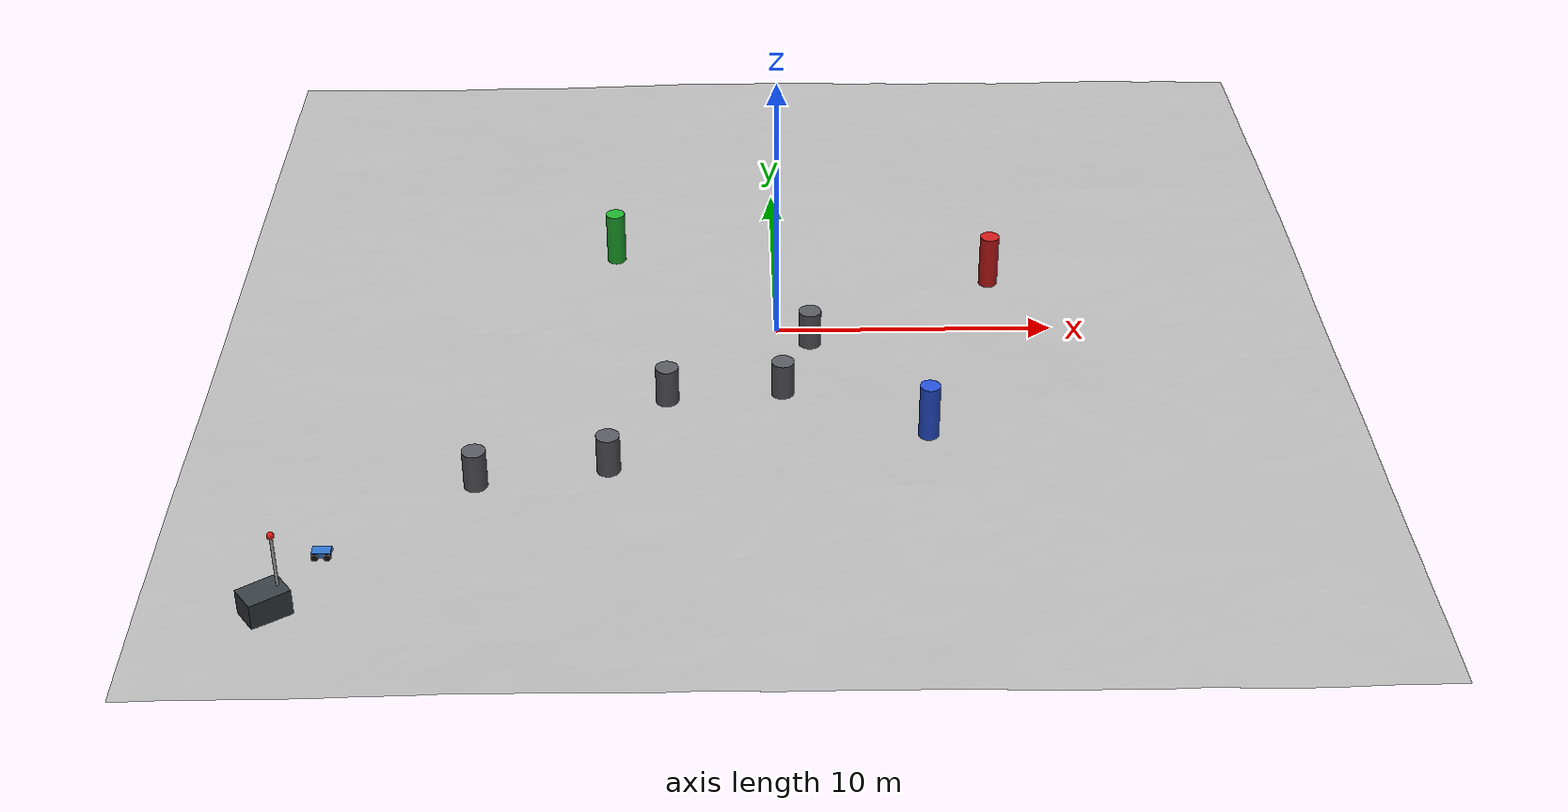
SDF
<?xml version="1.0"?>
<sdf version="1.9">
  <world name="teleop_rough">
    <physics name="p" type="ignored"><max_step_size>0.004</max_step_size>
      <real_time_factor>1.0</real_time_factor></physics>
    <plugin filename="gz-sim-physics-system" name="gz::sim::systems::Physics"/>
    <plugin filename="gz-sim-user-commands-system"
            name="gz::sim::systems::UserCommands"/>
    <plugin filename="gz-sim-scene-broadcaster-system"
            name="gz::sim::systems::SceneBroadcaster"/>
    <plugin filename="gz-sim-sensors-system" name="gz::sim::systems::Sensors">
      <render_engine>ogre2</render_engine>
    </plugin>
    <light type="directional" name="sun"><cast_shadows>true</cast_shadows>
      <pose>0 0 10 0 0 0</pose><diffuse>0.95 0.92 0.86 1</diffuse>
      <direction>-0.4 0.2 -0.9</direction></light>

    <model name="terrain"><static>true</static>
      <link name="l">
        <collision name="c"><geometry><mesh><uri>file:///home/ubuntu/TEZA/src/teleop_rover/worlds/teleop_rough_terrain.obj</uri></mesh></geometry></collision>
        <visual name="v"><geometry><mesh><uri>file:///home/ubuntu/TEZA/src/teleop_rover/worlds/teleop_rough_terrain.obj</uri></mesh></geometry></visual>
      </link>
    </model>

    <model name="target_red"><static>true</static>
      <pose>8.00 3.00 1.15 0 0 0</pose>
      <link name="l">
        <visual name="v"><geometry><cylinder><radius>0.35</radius>
          <length>2.0</length></cylinder></geometry>
          <material><ambient>0.8 0.1 0.1 1</ambient>
          <diffuse>0.8 0.1 0.1 1</diffuse></material></visual>
        <collision name="c"><geometry><cylinder><radius>0.35</radius>
          <length>2.0</length></cylinder></geometry></collision></link>
    </model>
    <model name="target_green"><static>true</static>
      <pose>-6.00 5.00 1.17 0 0 0</pose>
      <link name="l">
        <visual name="v"><geometry><cylinder><radius>0.35</radius>
          <length>2.0</length></cylinder></geometry>
          <material><ambient>0.12 0.7 0.18 1</ambient>
          <diffuse>0.12 0.7 0.18 1</diffuse></material></visual>
        <collision name="c"><geometry><cylinder><radius>0.35</radius>
          <length>2.0</length></cylinder></geometry></collision></link>
    </model>
    <model name="target_blue"><static>true</static>
      <pose>5.00 -7.00 1.19 0 0 0</pose>
      <link name="l">
        <visual name="v"><geometry><cylinder><radius>0.35</radius>
          <length>2.0</length></cylinder></geometry>
          <material><ambient>0.15 0.32 0.85 1</ambient>
          <diffuse>0.15 0.32 0.85 1</diffuse></material></visual>
        <collision name="c"><geometry><cylinder><radius>0.35</radius>
          <length>2.0</length></cylinder></geometry></collision></link>
    </model>

    <model name="gcs_station"><static>true</static>
      <pose>-16.00 -16.00 0.14 0 0 0.6</pose>
      <link name="l">
        <visual name="box"><pose>0 0 0.45 0 0 0</pose>
          <geometry><box><size>1.4 1.0 0.9</size></box></geometry>
          <material><ambient>0.22 0.24 0.26 1</ambient>
          <diffuse>0.22 0.24 0.26 1</diffuse></material></visual>
        <collision name="cbox"><pose>0 0 0.45 0 0 0</pose>
          <geometry><box><size>1.4 1.0 0.9</size></box></geometry></collision>
        <visual name="mast"><pose>0.5 0 1.6 0 0 0</pose>
          <geometry><cylinder><radius>0.05</radius><length>2.2</length></cylinder></geometry>
          <material><ambient>0.7 0.7 0.7 1</ambient></material></visual>
        <visual name="tip"><pose>0.5 0 2.75 0 0 0</pose>
          <geometry><sphere><radius>0.12</radius></sphere></geometry>
          <material><ambient>0.85 0.1 0.1 1</ambient>
          <diffuse>0.85 0.1 0.1 1</diffuse></material></visual>
      </link>
    </model>

    <model name="obs_1"><static>true</static>
      <pose>-10.15 -9.46 0.75 0 0 0</pose>
      <link name="l">
        <visual name="v"><geometry><cylinder><radius>0.40</radius>
          <length>1.5</length></cylinder></geometry>
          <material><ambient>0.35 0.35 0.38 1</ambient>
          <diffuse>0.35 0.35 0.38 1</diffuse></material></visual>
        <collision name="c"><geometry><cylinder><radius>0.40</radius>
          <length>1.5</length></cylinder></geometry></collision></link>
    </model>
    <model name="obs_2"><static>true</static>
      <pose>-5.80 -8.68 0.75 0 0 0</pose>
      <link name="l">
        <visual name="v"><geometry><cylinder><radius>0.40</radius>
          <length>1.5</length></cylinder></geometry>
          <material><ambient>0.35 0.35 0.38 1</ambient>
          <diffuse>0.35 0.35 0.38 1</diffuse></material></visual>
        <collision name="c"><geometry><cylinder><radius>0.40</radius>
          <length>1.5</length></cylinder></geometry></collision></link>
    </model>
    <model name="obs_3"><static>true</static>
      <pose>-3.91 -4.62 0.75 0 0 0</pose>
      <link name="l">
        <visual name="v"><geometry><cylinder><radius>0.40</radius>
          <length>1.5</length></cylinder></geometry>
          <material><ambient>0.35 0.35 0.38 1</ambient>
          <diffuse>0.35 0.35 0.38 1</diffuse></material></visual>
        <collision name="c"><geometry><cylinder><radius>0.40</radius>
          <length>1.5</length></cylinder></geometry></collision></link>
    </model>
    <model name="obs_4"><static>true</static>
      <pose>0.11 -4.34 0.75 0 0 0</pose>
      <link name="l">
        <visual name="v"><geometry><cylinder><radius>0.40</radius>
          <length>1.5</length></cylinder></geometry>
          <material><ambient>0.35 0.35 0.38 1</ambient>
          <diffuse>0.35 0.35 0.38 1</diffuse></material></visual>
        <collision name="c"><geometry><cylinder><radius>0.40</radius>
          <length>1.5</length></cylinder></geometry></collision></link>
    </model>
    <model name="obs_5"><static>true</static>
      <pose>1.16 -1.04 0.75 0 0 0</pose>
      <link name="l">
        <visual name="v"><geometry><cylinder><radius>0.40</radius>
          <length>1.5</length></cylinder></geometry>
          <material><ambient>0.35 0.35 0.38 1</ambient>
          <diffuse>0.35 0.35 0.38 1</diffuse></material></visual>
        <collision name="c"><geometry><cylinder><radius>0.40</radius>
          <length>1.5</length></cylinder></geometry></collision></link>
    </model>
    <model name="rover">
      <pose>-14.5 -14.0 0.75 0 0 0</pose>
      <link name="chassis"><pose>0 0 0.18 0 0 0</pose>
        <inertial><mass>5.0</mass><inertia><ixx>0.07</ixx><iyy>0.12</iyy>
          <izz>0.16</izz><ixy>0</ixy><ixz>0</ixz><iyz>0</iyz></inertia></inertial>
        <visual name="v"><geometry><box><size>0.6 0.4 0.18</size></box>
          </geometry><material><ambient>0.18 0.45 0.8 1</ambient>
          <diffuse>0.18 0.45 0.8 1</diffuse></material></visual>
        <collision name="c"><geometry><box><size>0.6 0.4 0.18</size></box>
          </geometry></collision>

        <sensor name="front_camera" type="camera">
          <pose>0.34 0 0.18 0 0.2 0</pose>
          <topic>camera/image</topic>
          <update_rate>15</update_rate>
          <always_on>1</always_on>
          <visualize>true</visualize>
          <camera>
            <horizontal_fov>1.0472</horizontal_fov>
            <image><width>320</width><height>240</height><format>R8G8B8</format></image>
            <clip><near>0.05</near><far>60</far></clip>
          </camera>
        </sensor>

        <sensor name="front_lidar" type="gpu_lidar">
          <pose>0.3 0 0.2 0 0 0</pose>
          <topic>scan</topic>
          <update_rate>10</update_rate>
          <always_on>1</always_on>
          <lidar><scan><horizontal><samples>360</samples><resolution>1</resolution>
            <min_angle>-3.14159</min_angle><max_angle>3.14159</max_angle></horizontal></scan>
            <range><min>0.12</min><max>12.0</max><resolution>0.01</resolution></range>
          </lidar>
        </sensor>
      </link>

      <link name="fl_wheel"><pose>0.2 0.21 0.12 -1.5708 0 0</pose>
        <inertial><mass>0.7</mass><inertia><ixx>0.003</ixx><iyy>0.003</iyy>
          <izz>0.005</izz><ixy>0</ixy><ixz>0</ixz><iyz>0</iyz></inertia></inertial>
        <visual name="v"><geometry><cylinder><radius>0.12</radius>
          <length>0.06</length></cylinder></geometry>
          <material><ambient>0.08 0.08 0.08 1</ambient></material></visual>
        <collision name="c"><geometry><cylinder><radius>0.12</radius>
          <length>0.06</length></cylinder></geometry>
          <surface><friction><ode><mu>1.4</mu><mu2>1.2</mu2></ode>
          </friction></surface></collision></link>
      <joint name="fl_wheel_joint" type="revolute">
        <parent>chassis</parent><child>fl_wheel</child>
        <axis><xyz>0 0 1</xyz><limit><lower>-1e16</lower><upper>1e16</upper></limit></axis>
      </joint>

      <link name="rl_wheel"><pose>-0.2 0.21 0.12 -1.5708 0 0</pose>
        <inertial><mass>0.7</mass><inertia><ixx>0.003</ixx><iyy>0.003</iyy>
          <izz>0.005</izz><ixy>0</ixy><ixz>0</ixz><iyz>0</iyz></inertia></inertial>
        <visual name="v"><geometry><cylinder><radius>0.12</radius>
          <length>0.06</length></cylinder></geometry>
          <material><ambient>0.08 0.08 0.08 1</ambient></material></visual>
        <collision name="c"><geometry><cylinder><radius>0.12</radius>
          <length>0.06</length></cylinder></geometry>
          <surface><friction><ode><mu>1.4</mu><mu2>1.2</mu2></ode>
          </friction></surface></collision></link>
      <joint name="rl_wheel_joint" type="revolute">
        <parent>chassis</parent><child>rl_wheel</child>
        <axis><xyz>0 0 1</xyz><limit><lower>-1e16</lower><upper>1e16</upper></limit></axis>
      </joint>

      <link name="fr_wheel"><pose>0.2 -0.21 0.12 -1.5708 0 0</pose>
        <inertial><mass>0.7</mass><inertia><ixx>0.003</ixx><iyy>0.003</iyy>
          <izz>0.005</izz><ixy>0</ixy><ixz>0</ixz><iyz>0</iyz></inertia></inertial>
        <visual name="v"><geometry><cylinder><radius>0.12</radius>
          <length>0.06</length></cylinder></geometry>
          <material><ambient>0.08 0.08 0.08 1</ambient></material></visual>
        <collision name="c"><geometry><cylinder><radius>0.12</radius>
          <length>0.06</length></cylinder></geometry>
          <surface><friction><ode><mu>1.4</mu><mu2>1.2</mu2></ode>
          </friction></surface></collision></link>
      <joint name="fr_wheel_joint" type="revolute">
        <parent>chassis</parent><child>fr_wheel</child>
        <axis><xyz>0 0 1</xyz><limit><lower>-1e16</lower><upper>1e16</upper></limit></axis>
      </joint>

      <link name="rr_wheel"><pose>-0.2 -0.21 0.12 -1.5708 0 0</pose>
        <inertial><mass>0.7</mass><inertia><ixx>0.003</ixx><iyy>0.003</iyy>
          <izz>0.005</izz><ixy>0</ixy><ixz>0</ixz><iyz>0</iyz></inertia></inertial>
        <visual name="v"><geometry><cylinder><radius>0.12</radius>
          <length>0.06</length></cylinder></geometry>
          <material><ambient>0.08 0.08 0.08 1</ambient></material></visual>
        <collision name="c"><geometry><cylinder><radius>0.12</radius>
          <length>0.06</length></cylinder></geometry>
          <surface><friction><ode><mu>1.4</mu><mu2>1.2</mu2></ode>
          </friction></surface></collision></link>
      <joint name="rr_wheel_joint" type="revolute">
        <parent>chassis</parent><child>rr_wheel</child>
        <axis><xyz>0 0 1</xyz><limit><lower>-1e16</lower><upper>1e16</upper></limit></axis>
      </joint>
      <plugin filename="gz-sim-diff-drive-system"
              name="gz::sim::systems::DiffDrive">
        <left_joint>fl_wheel_joint</left_joint>
        <left_joint>rl_wheel_joint</left_joint>
        <right_joint>fr_wheel_joint</right_joint>
        <right_joint>rr_wheel_joint</right_joint>
        <wheel_separation>0.42</wheel_separation>
        <wheel_radius>0.12</wheel_radius>
        <odom_publish_frequency>30</odom_publish_frequency>
        <topic>/model/rover/cmd_vel</topic>
        <odom_topic>/model/rover/odometry</odom_topic>
      </plugin>
    </model>
  </world>
</sdf>
